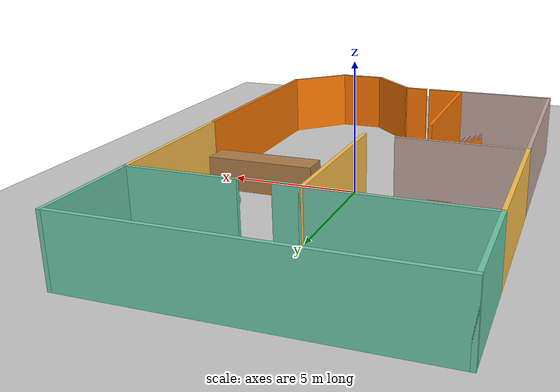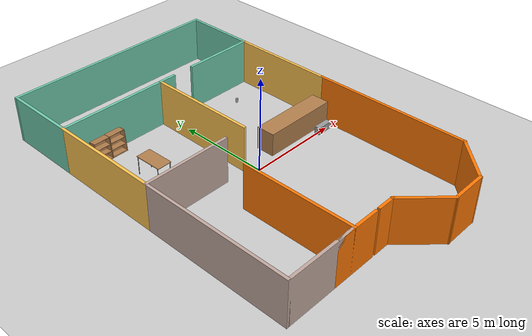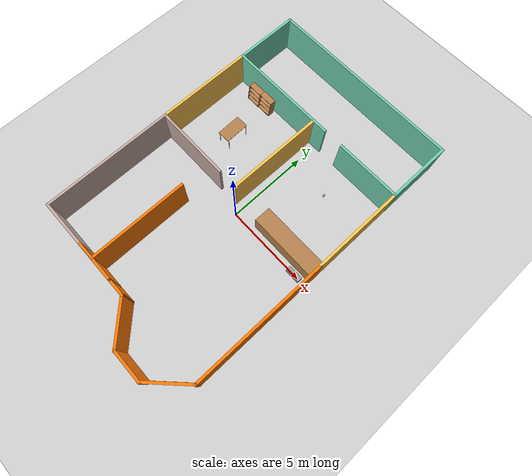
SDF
<sdf version="1.7">
 <world name="default">
  <plugin name="welcome" filename="libwelcome.so"/>
  <light name="sun" type="directional">
   <pose>0 0 10 0 -0 0</pose>
   <diffuse>0.8 0.8 0.8 1</diffuse>
   <specular>0.2 0.2 0.2 1</specular>
   <attenuation>
    <range>1000</range>
    <constant>0.9</constant>
    <linear>0.01</linear>
    <quadratic>0.001</quadratic>
   </attenuation>
   <direction>-0.5 0.1 -0.9</direction>
   <spot><inner_angle>0</inner_angle><outer_angle>0</outer_angle><falloff>0</falloff></spot>
  </light>
  <model name="ground_plane">
   <static>1</static>
   <link name="link">
    <collision name="collision">
     <geometry><plane><normal>0 0 1</normal><size>100 100</size></plane></geometry>
     <surface>
      <contact><collide_bitmask>65535</collide_bitmask></contact>
      <friction><ode><mu>100</mu><mu2>50</mu2></ode></friction>
     </surface>
    </collision>
    <visual name="visual">
     <cast_shadows>0</cast_shadows>
     <geometry><plane><normal>0 0 1</normal><size>100 100</size></plane></geometry>
     <material>
      <script><uri>file://media/materials/scripts/gazebo.material</uri><name>Gazebo/Grey</name></script>
     </material>
    </visual>
   </link>
  </model>
  <gravity>0 0 -9.8</gravity>
  <magnetic_field>6e-06 2.3e-05 -4.2e-05</magnetic_field>
  <atmosphere type="adiabatic"/>
  <physics type="ode">
   <max_step_size>0.001</max_step_size>
   <real_time_factor>1</real_time_factor>
   <real_time_update_rate>1000</real_time_update_rate>
  </physics>
  <scene><ambient>0.4 0.4 0.4 1</ambient><background>0.7 0.7 0.7 1</background><shadows>1</shadows></scene>
  <spherical_coordinates>
   <surface_model>EARTH_WGS84</surface_model>
   <latitude_deg>0</latitude_deg>
   <longitude_deg>0</longitude_deg>
   <elevation>0</elevation>
   <heading_deg>0</heading_deg>
  </spherical_coordinates>
  <model name="Model">
   <pose>-0.415298 0.49723 0 0 -0 0</pose>
   <link name="Wall_0">
    <collision name="Wall_0_Collision">
     <geometry><box><size>12 0.15 2.5</size></box></geometry>
     <pose>0 0 1.25 0 -0 0</pose>
    </collision>
    <visual name="Wall_0_Visual">
     <pose>0 0 1.25 0 -0 0</pose>
     <geometry><box><size>12 0.15 2.5</size></box></geometry>
     <material>
      <script><uri>file://media/materials/scripts/gazebo.material</uri><name>Gazebo/Grey</name></script>
      <ambient>0.435294 0.796078 0.67451 1</ambient>
     </material>
     <meta><layer>0</layer></meta>
    </visual>
    <pose>-0.015533 9.70977 0 0 -0 0</pose>
   </link>
   <link name="Wall_11">
    <collision name="Wall_11_Collision">
     <geometry><box><size>4 0.15 2.5</size></box></geometry>
     <pose>0 0 1.25 0 -0 0</pose>
    </collision>
    <visual name="Wall_11_Visual">
     <pose>0 0 1.25 0 -0 0</pose>
     <geometry><box><size>4 0.15 2.5</size></box></geometry>
     <material>
      <script><uri>file://media/materials/scripts/gazebo.material</uri><name>Gazebo/Grey</name></script>
      <ambient>0.435294 0.796078 0.67451 1</ambient>
     </material>
     <meta><layer>0</layer></meta>
    </visual>
    <pose>5.90947 7.78477 0 0 -0 -1.5708</pose>
   </link>
   <link name="Wall_12">
    <collision name="Wall_12_Collision">
     <geometry><box><size>4 0.15 2.5</size></box></geometry>
     <pose>0 0 1.25 0 -0 0</pose>
    </collision>
    <visual name="Wall_12_Visual">
     <pose>0 0 1.25 0 -0 0</pose>
     <geometry><box><size>4 0.15 2.5</size></box></geometry>
     <material>
      <script><uri>file://media/materials/scripts/gazebo.material</uri><name>Gazebo/Grey</name></script>
      <ambient>0.435294 0.796078 0.67451 1</ambient>
     </material>
     <meta><layer>0</layer></meta>
    </visual>
    <pose>3.98447 5.85977 0 0 -0 3.14159</pose>
   </link>
   <link name="Wall_14">
    <collision name="Wall_14_Collision">
     <geometry><box><size>5.65274 0.15 2.5</size></box></geometry>
     <pose>0 0 1.25 0 -0 0</pose>
    </collision>
    <visual name="Wall_14_Visual">
     <pose>0 0 1.25 0 -0 0</pose>
     <geometry><box><size>5.65274 0.15 2.5</size></box></geometry>
     <material>
      <script><uri>file://media/materials/scripts/gazebo.material</uri><name>Gazebo/Grey</name></script>
      <ambient>1 0.764706 0.305882 1</ambient>
     </material>
     <meta><layer>0</layer></meta>
    </visual>
    <pose>5.90938 3.10857 0 0 -0 -1.57083</pose>
   </link>
   <link name="Wall_17">
    <collision name="Wall_17_Collision">
     <geometry><box><size>8 0.15 2.5</size></box></geometry>
     <pose>0 0 1.25 0 -0 0</pose>
    </collision>
    <visual name="Wall_17_Visual">
     <pose>0 0 1.25 0 -0 0</pose>
     <geometry><box><size>8 0.15 2.5</size></box></geometry>
     <material>
      <script><uri>file://media/materials/scripts/gazebo.material</uri><name>Gazebo/Grey</name></script>
      <ambient>0.760784 0.662745 0.627451 1</ambient>
     </material>
     <meta><layer>0</layer></meta>
    </visual>
    <pose>-5.94053 -3.91523 0 0 -0 -1.5708</pose>
   </link>
   <link name="Wall_18">
    <collision name="Wall_18_Collision">
     <geometry><box><size>4 0.15 2.5</size></box></geometry>
     <pose>0 0 1.25 0 -0 0</pose>
    </collision>
    <visual name="Wall_18_Visual">
     <pose>0 0 1.25 0 -0 0</pose>
     <geometry><box><size>4 0.15 2.5</size></box></geometry>
     <material>
      <script><uri>file://media/materials/scripts/gazebo.material</uri><name>Gazebo/Grey</name></script>
      <ambient>0.760784 0.662745 0.627451 1</ambient>
     </material>
     <meta><layer>0</layer></meta>
    </visual>
    <pose>-4.01553 -7.84023 0 0 -0 0</pose>
   </link>
   <link name="Wall_19">
    <collision name="Wall_19_Collision">
     <geometry><box><size>6 0.15 2.5</size></box></geometry>
     <pose>0 0 1.25 0 -0 0</pose>
    </collision>
    <visual name="Wall_19_Visual">
     <pose>0 0 1.25 0 -0 0</pose>
     <geometry><box><size>6 0.15 2.5</size></box></geometry>
     <material>
      <script><uri>file://media/materials/scripts/gazebo.material</uri><name>Gazebo/Grey</name></script>
      <ambient>0.996078 0.47451 0.0196078 1</ambient>
     </material>
     <meta><layer>0</layer></meta>
    </visual>
    <pose>-2.09053 -4.91523 0 0 -0 1.5708</pose>
   </link>
   <link name="Wall_2">
    <collision name="Wall_2_Collision">
     <geometry><box><size>4 0.15 2.5</size></box></geometry>
     <pose>0 0 1.25 0 -0 0</pose>
    </collision>
    <visual name="Wall_2_Visual">
     <pose>0 0 1.25 0 -0 0</pose>
     <geometry><box><size>4 0.15 2.5</size></box></geometry>
     <material>
      <script><uri>file://media/materials/scripts/gazebo.material</uri><name>Gazebo/Grey</name></script>
      <ambient>0.435294 0.796078 0.67451 1</ambient>
     </material>
     <meta><layer>0</layer></meta>
    </visual>
    <pose>-5.94053 7.78477 0 0 -0 -1.5708</pose>
   </link>
   <link name="Wall_22">
    <collision name="Wall_22_Collision">
     <geometry><box><size>8.34781 0.15 2.5</size></box></geometry>
     <pose>0 0 1.25 0 -0 0</pose>
    </collision>
    <visual name="Wall_22_Visual">
     <pose>0 0 1.25 0 -0 0</pose>
     <geometry><box><size>8.34781 0.15 2.5</size></box></geometry>
     <material>
      <script><uri>file://media/materials/scripts/gazebo.material</uri><name>Gazebo/Grey</name></script>
      <ambient>0.996078 0.47451 0.0196078 1</ambient>
     </material>
     <meta><layer>0</layer></meta>
    </visual>
    <pose>5.90938 -3.74143 0 0 -0 -1.57078</pose>
   </link>
   <link name="Wall_23">
    <collision name="Wall_23_Collision">
     <geometry><box><size>2.75 0.15 2.5</size></box></geometry>
     <pose>0 0 1.25 0 -0 0</pose>
    </collision>
    <visual name="Wall_23_Visual">
     <pose>0 0 1.25 0 -0 0</pose>
     <geometry><box><size>2.75 0.15 2.5</size></box></geometry>
     <material>
      <script><uri>file://media/materials/scripts/gazebo.material</uri><name>Gazebo/Grey</name></script>
      <ambient>0.996078 0.47451 0.0196078 1</ambient>
     </material>
     <meta><layer>0</layer></meta>
    </visual>
    <pose>4.99023 -8.75947 0 0 -0 -2.35619</pose>
   </link>
   <link name="Wall_24">
    <collision name="Wall_24_Collision">
     <geometry><box><size>2 0.15 2.5</size></box></geometry>
     <pose>0 0 1.25 0 -0 0</pose>
    </collision>
    <visual name="Wall_24_Visual">
     <pose>0 0 1.25 0 -0 0</pose>
     <geometry><box><size>2 0.15 2.5</size></box></geometry>
     <material>
      <script><uri>file://media/materials/scripts/gazebo.material</uri><name>Gazebo/Grey</name></script>
      <ambient>0.996078 0.47451 0.0196078 1</ambient>
     </material>
     <meta><layer>0</layer></meta>
    </visual>
    <pose>3.14599 -9.67871 0 0 -0 3.14159</pose>
   </link>
   <link name="Wall_25">
    <collision name="Wall_25_Collision">
     <geometry><box><size>2.75 0.15 2.5</size></box></geometry>
     <pose>0 0 1.25 0 -0 0</pose>
    </collision>
    <visual name="Wall_25_Visual">
     <pose>0 0 1.25 0 -0 0</pose>
     <geometry><box><size>2.75 0.15 2.5</size></box></geometry>
     <material>
      <script><uri>file://media/materials/scripts/gazebo.material</uri><name>Gazebo/Grey</name></script>
      <ambient>0.996078 0.47451 0.0196078 1</ambient>
     </material>
     <meta><layer>0</layer></meta>
    </visual>
    <pose>1.30175 -8.75947 0 0 -0 2.35619</pose>
   </link>
   <link name="Wall_26">
    <collision name="Wall_26_Collision">
     <geometry><box><size>1 0.15 2.5</size></box></geometry>
     <pose>0 0 1.25 0 -0 0</pose>
    </collision>
    <visual name="Wall_26_Visual">
     <pose>0 0 1.25 0 -0 0</pose>
     <geometry><box><size>1 0.15 2.5</size></box></geometry>
     <material>
      <script><uri>file://media/materials/scripts/gazebo.material</uri><name>Gazebo/Grey</name></script>
      <ambient>0.996078 0.47451 0.0196078 1</ambient>
     </material>
     <meta><layer>0</layer></meta>
    </visual>
    <pose>-0.042488 -7.84023 0 0 -0 3.14159</pose>
   </link>
   <link name="Wall_28">
    <collision name="Wall_28_Collision">
     <geometry><box><size>2.5 0.15 2.5</size></box></geometry>
     <pose>0 0 1.25 0 -0 0</pose>
    </collision>
    <visual name="Wall_28_Visual">
     <pose>0 0 1.25 0 -0 0</pose>
     <geometry><box><size>2.5 0.15 2.5</size></box></geometry>
     <material>
      <script><uri>file://media/materials/scripts/gazebo.material</uri><name>Gazebo/Grey</name></script>
      <ambient>0.996078 0.47451 0.0196078 1</ambient>
     </material>
     <meta><layer>0</layer></meta>
    </visual>
    <pose>-1.91553 -7.84023 0 0 -0 0</pose>
   </link>
   <link name="Wall_3">
    <collision name="Wall_3_Collision">
     <geometry><box><size>6 0.15 2.5</size></box></geometry>
     <pose>0 0 1.25 0 -0 0</pose>
    </collision>
    <visual name="Wall_3_Visual">
     <pose>0 0 1.25 0 -0 0</pose>
     <geometry><box><size>6 0.15 2.5</size></box></geometry>
     <material>
      <script><uri>file://media/materials/scripts/gazebo.material</uri><name>Gazebo/Grey</name></script>
      <ambient>0.435294 0.796078 0.67451 1</ambient>
     </material>
     <meta><layer>0</layer></meta>
    </visual>
    <pose>-3.01553 5.85977 0 0 -0 0</pose>
   </link>
   <link name="Wall_31">
    <collision name="Wall_31_Collision">
     <geometry><box><size>4.25 1 1.25</size></box></geometry>
     <pose>0 0 0.625 0 -0 0</pose>
    </collision>
    <visual name="Wall_31_Visual">
     <pose>0 0 0.625 0 -0 0</pose>
     <geometry><box><size>4.25 1 1.25</size></box></geometry>
     <material>
      <script><uri>file://media/materials/scripts/gazebo.material</uri><name>Gazebo/Wood</name></script>
      <ambient>1 1 1 1</ambient>
     </material>
     <meta><layer>0</layer></meta>
    </visual>
    <pose>3.8083 0.326538 0 0 -0 0</pose>
   </link>
   <link name="Wall_4">
    <collision name="Wall_4_Collision">
     <geometry><box><size>5.9849 0.15 2.5</size></box></geometry>
     <pose>0 0 1.25 0 -0 0</pose>
    </collision>
    <visual name="Wall_4_Visual">
     <pose>0 0 1.25 0 -0 0</pose>
     <geometry><box><size>5.9849 0.15 2.5</size></box></geometry>
     <material>
      <script><uri>file://media/materials/scripts/gazebo.material</uri><name>Gazebo/Grey</name></script>
      <ambient>1 0.764706 0.305882 1</ambient>
     </material>
     <meta><layer>0</layer></meta>
    </visual>
    <pose>-0.098094 2.94233 0 0 -0 -1.57339</pose>
   </link>
   <link name="Wall_6">
    <collision name="Wall_6_Collision">
     <geometry><box><size>6 0.15 2.5</size></box></geometry>
     <pose>0 0 1.25 0 -0 0</pose>
    </collision>
    <visual name="Wall_6_Visual">
     <pose>0 0 1.25 0 -0 0</pose>
     <geometry><box><size>6 0.15 2.5</size></box></geometry>
     <material>
      <script><uri>file://media/materials/scripts/gazebo.material</uri><name>Gazebo/Grey</name></script>
      <ambient>1 0.764706 0.305882 1</ambient>
     </material>
     <meta><layer>0</layer></meta>
    </visual>
    <pose>-5.94053 2.93477 0 0 -0 -1.5708</pose>
   </link>
   <link name="Wall_7">
    <collision name="Wall_7_Collision">
     <geometry><box><size>4.75 0.15 2.5</size></box></geometry>
     <pose>0 0 1.25 0 -0 0</pose>
    </collision>
    <visual name="Wall_7_Visual">
     <pose>0 0 1.25 0 -0 0</pose>
     <geometry><box><size>4.75 0.15 2.5</size></box></geometry>
     <material>
      <script><uri>file://media/materials/scripts/gazebo.material</uri><name>Gazebo/Grey</name></script>
      <ambient>0.760784 0.662745 0.627451 1</ambient>
     </material>
     <meta><layer>0</layer></meta>
    </visual>
    <pose>-3.64053 0.009772 0 0 -0 0</pose>
   </link>
   <link name="Wall_9">
    <collision name="Wall_9_Collision">
     <geometry><box><size>1 0.15 2.5</size></box></geometry>
     <pose>0 0 1.25 0 -0 0</pose>
    </collision>
    <visual name="Wall_9_Visual">
     <pose>0 0 1.25 0 -0 0</pose>
     <geometry><box><size>1 0.15 2.5</size></box></geometry>
     <material>
      <script><uri>file://media/materials/scripts/gazebo.material</uri><name>Gazebo/Grey</name></script>
      <ambient>0.435294 0.796078 0.67451 1</ambient>
     </material>
     <meta><layer>0</layer></meta>
    </visual>
    <pose>0.334467 5.85977 0 0 -0 0</pose>
   </link>
   <static>1</static>
  </model>
  <model name="bookshelf">
   <static>1</static>
   <link name="link">
    <inertial><mass>1</mass></inertial>
    <collision name="back">
     <pose>0 0.005 0.6 0 -0 0</pose>
     <geometry><box><size>0.9 0.01 1.2</size></box></geometry>
    </collision>
    <visual name="visual1">
     <pose>0 0.005 0.6 0 -0 0</pose>
     <geometry><box><size>0.9 0.01 1.2</size></box></geometry>
     <material>
      <script><uri>file://media/materials/scripts/gazebo.material</uri><name>Gazebo/Wood</name></script>
     </material>
    </visual>
    <collision name="left_side">
     <pose>0.45 -0.195 0.6 0 -0 0</pose>
     <geometry><box><size>0.02 0.4 1.2</size></box></geometry>
    </collision>
    <visual name="visual2">
     <pose>0.45 -0.195 0.6 0 -0 0</pose>
     <geometry><box><size>0.02 0.4 1.2</size></box></geometry>
     <material>
      <script><uri>file://media/materials/scripts/gazebo.material</uri><name>Gazebo/Wood</name></script>
     </material>
    </visual>
    <collision name="right_side">
     <pose>-0.45 -0.195 0.6 0 -0 0</pose>
     <geometry><box><size>0.02 0.4 1.2</size></box></geometry>
    </collision>
    <visual name="visual3">
     <pose>-0.45 -0.195 0.6 0 -0 0</pose>
     <geometry><box><size>0.02 0.4 1.2</size></box></geometry>
     <material>
      <script><uri>file://media/materials/scripts/gazebo.material</uri><name>Gazebo/Wood</name></script>
     </material>
    </visual>
    <collision name="bottom">
     <pose>0 -0.195 0.03 0 -0 0</pose>
     <geometry><box><size>0.88 0.4 0.06</size></box></geometry>
    </collision>
    <visual name="visual4">
     <pose>0 -0.195 0.03 0 -0 0</pose>
     <geometry><box><size>0.88 0.4 0.06</size></box></geometry>
     <material>
      <script><uri>file://media/materials/scripts/gazebo.material</uri><name>Gazebo/Wood</name></script>
     </material>
    </visual>
    <collision name="top">
     <pose>0 -0.195 1.19 0 -0 0</pose>
     <geometry><box><size>0.88 0.4 0.02</size></box></geometry>
    </collision>
    <visual name="visual5">
     <pose>0 -0.195 1.19 0 -0 0</pose>
     <geometry><box><size>0.88 0.4 0.02</size></box></geometry>
     <material>
      <script><uri>file://media/materials/scripts/gazebo.material</uri><name>Gazebo/Wood</name></script>
     </material>
    </visual>
    <collision name="low_shelf">
     <pose>0 -0.195 0.43 0 -0 0</pose>
     <geometry><box><size>0.88 0.4 0.02</size></box></geometry>
    </collision>
    <visual name="visual6">
     <pose>0 -0.195 0.43 0 -0 0</pose>
     <geometry><box><size>0.88 0.4 0.02</size></box></geometry>
     <material>
      <script><uri>file://media/materials/scripts/gazebo.material</uri><name>Gazebo/Wood</name></script>
     </material>
    </visual>
    <collision name="high_shelf">
     <pose>0 -0.195 0.8 0 -0 0</pose>
     <geometry><box><size>0.88 0.4 0.02</size></box></geometry>
    </collision>
    <visual name="visual7">
     <pose>0 -0.195 0.8 0 -0 0</pose>
     <geometry><box><size>0.88 0.4 0.02</size></box></geometry>
     <material>
      <script><uri>file://media/materials/scripts/gazebo.material</uri><name>Gazebo/Wood</name></script>
     </material>
    </visual>
   </link>
   <pose>-4.71823 6.08584 0 -0.106297 0 0</pose>
  </model>
  <model name="bookshelf_clone">
   <static>1</static>
   <link name="link">
    <inertial><mass>1</mass></inertial>
    <collision name="back">
     <pose>0 0.005 0.6 0 -0 0</pose>
     <geometry><box><size>0.9 0.01 1.2</size></box></geometry>
    </collision>
    <visual name="visual1">
     <pose>0 0.005 0.6 0 -0 0</pose>
     <geometry><box><size>0.9 0.01 1.2</size></box></geometry>
     <material>
      <script><uri>file://media/materials/scripts/gazebo.material</uri><name>Gazebo/Wood</name></script>
     </material>
    </visual>
    <collision name="left_side">
     <pose>0.45 -0.195 0.6 0 -0 0</pose>
     <geometry><box><size>0.02 0.4 1.2</size></box></geometry>
    </collision>
    <visual name="visual2">
     <pose>0.45 -0.195 0.6 0 -0 0</pose>
     <geometry><box><size>0.02 0.4 1.2</size></box></geometry>
     <material>
      <script><uri>file://media/materials/scripts/gazebo.material</uri><name>Gazebo/Wood</name></script>
     </material>
    </visual>
    <collision name="right_side">
     <pose>-0.45 -0.195 0.6 0 -0 0</pose>
     <geometry><box><size>0.02 0.4 1.2</size></box></geometry>
    </collision>
    <visual name="visual3">
     <pose>-0.45 -0.195 0.6 0 -0 0</pose>
     <geometry><box><size>0.02 0.4 1.2</size></box></geometry>
     <material>
      <script><uri>file://media/materials/scripts/gazebo.material</uri><name>Gazebo/Wood</name></script>
     </material>
    </visual>
    <collision name="bottom">
     <pose>0 -0.195 0.03 0 -0 0</pose>
     <geometry><box><size>0.88 0.4 0.06</size></box></geometry>
    </collision>
    <visual name="visual4">
     <pose>0 -0.195 0.03 0 -0 0</pose>
     <geometry><box><size>0.88 0.4 0.06</size></box></geometry>
     <material>
      <script><uri>file://media/materials/scripts/gazebo.material</uri><name>Gazebo/Wood</name></script>
     </material>
    </visual>
    <collision name="top">
     <pose>0 -0.195 1.19 0 -0 0</pose>
     <geometry><box><size>0.88 0.4 0.02</size></box></geometry>
    </collision>
    <visual name="visual5">
     <pose>0 -0.195 1.19 0 -0 0</pose>
     <geometry><box><size>0.88 0.4 0.02</size></box></geometry>
     <material>
      <script><uri>file://media/materials/scripts/gazebo.material</uri><name>Gazebo/Wood</name></script>
     </material>
    </visual>
    <collision name="low_shelf">
     <pose>0 -0.195 0.43 0 -0 0</pose>
     <geometry><box><size>0.88 0.4 0.02</size></box></geometry>
    </collision>
    <visual name="visual6">
     <pose>0 -0.195 0.43 0 -0 0</pose>
     <geometry><box><size>0.88 0.4 0.02</size></box></geometry>
     <material>
      <script><uri>file://media/materials/scripts/gazebo.material</uri><name>Gazebo/Wood</name></script>
     </material>
    </visual>
    <collision name="high_shelf">
     <pose>0 -0.195 0.8 0 -0 0</pose>
     <geometry><box><size>0.88 0.4 0.02</size></box></geometry>
    </collision>
    <visual name="visual7">
     <pose>0 -0.195 0.8 0 -0 0</pose>
     <geometry><box><size>0.88 0.4 0.02</size></box></geometry>
     <material>
      <script><uri>file://media/materials/scripts/gazebo.material</uri><name>Gazebo/Wood</name></script>
     </material>
    </visual>
   </link>
   <pose>-3.82838 6.10928 0 -0.106297 0 0</pose>
  </model>
  <model name="beer">
   <link name="link">
    <pose>0 0 0.115 0 -0 0</pose>
    <inertial>
     <mass>0.39</mass>
     <inertia><ixx>0.00058</ixx><ixy>0</ixy><ixz>0</ixz><iyy>0.00058</iyy><iyz>0</iyz><izz>0.00019</izz></inertia>
    </inertial>
    <collision name="collision">
     <geometry><cylinder><radius>0.055</radius><length>0.23</length></cylinder></geometry>
    </collision>
    <visual name="visual">
     <geometry><cylinder><radius>0.055</radius><length>0.23</length></cylinder></geometry>
     <material>
      <script>
       <uri>model://beer/materials/scripts</uri>
       <uri>model://beer/materials/textures</uri>
       <name>Beer/Diffuse</name>
      </script>
     </material>
    </visual>
   </link>
   <pose>2.7147 4.18492 0.77499 -1e-06 2.6e-05 0.009615</pose>
  </model>
  <model name="table">
   <static>1</static>
   <link name="link">
    <collision name="surface">
     <pose>0 0 1 0 -0 0</pose>
     <geometry><box><size>1.5 0.8 0.03</size></box></geometry>
     <surface><friction><ode><mu>0.6</mu><mu2>0.6</mu2></ode></friction></surface>
    </collision>
    <visual name="visual1">
     <pose>0 0 1 0 -0 0</pose>
     <geometry><box><size>1.5 0.8 0.03</size></box></geometry>
     <material>
      <script><uri>file://media/materials/scripts/gazebo.material</uri><name>Gazebo/Wood</name></script>
     </material>
    </visual>
    <collision name="front_left_leg">
     <pose>0.68 0.38 0.5 0 -0 0</pose>
     <geometry><cylinder><radius>0.02</radius><length>1</length></cylinder></geometry>
    </collision>
    <visual name="front_left_leg">
     <pose>0.68 0.38 0.5 0 -0 0</pose>
     <geometry><cylinder><radius>0.02</radius><length>1</length></cylinder></geometry>
     <material>
      <script><uri>file://media/materials/scripts/gazebo.material</uri><name>Gazebo/Grey</name></script>
     </material>
    </visual>
    <collision name="front_right_leg">
     <pose>0.68 -0.38 0.5 0 -0 0</pose>
     <geometry><cylinder><radius>0.02</radius><length>1</length></cylinder></geometry>
    </collision>
    <visual name="front_right_leg">
     <pose>0.68 -0.38 0.5 0 -0 0</pose>
     <geometry><cylinder><radius>0.02</radius><length>1</length></cylinder></geometry>
     <material>
      <script><uri>file://media/materials/scripts/gazebo.material</uri><name>Gazebo/Grey</name></script>
     </material>
    </visual>
    <collision name="back_right_leg">
     <pose>-0.68 -0.38 0.5 0 -0 0</pose>
     <geometry><cylinder><radius>0.02</radius><length>1</length></cylinder></geometry>
    </collision>
    <visual name="back_right_leg">
     <pose>-0.68 -0.38 0.5 0 -0 0</pose>
     <geometry><cylinder><radius>0.02</radius><length>1</length></cylinder></geometry>
     <material>
      <script><uri>file://media/materials/scripts/gazebo.material</uri><name>Gazebo/Grey</name></script>
     </material>
    </visual>
    <collision name="back_left_leg">
     <pose>-0.68 0.38 0.5 0 -0 0</pose>
     <geometry><cylinder><radius>0.02</radius><length>1</length></cylinder></geometry>
    </collision>
    <visual name="back_left_leg">
     <pose>-0.68 0.38 0.5 0 -0 0</pose>
     <geometry><cylinder><radius>0.02</radius><length>1</length></cylinder></geometry>
     <material>
      <script><uri>file://media/materials/scripts/gazebo.material</uri><name>Gazebo/Grey</name></script>
     </material>
    </visual>
   </link>
   <pose>-3.76548 3.19789 0 0 -0 1.59658</pose>
  </model>
  <model name="Box_36x15W">
   <link name="Wall">
    <pose>0 0 0.1985 0 -0 0</pose>
    <inertial>
     <mass>5</mass>
     <inertia><ixx>0.1022</ixx><iyy>0.4107</iyy><izz>0.3815</izz><ixy>0</ixy><ixz>0</ixz><iyz>0</iyz></inertia>
    </inertial>
    <collision name="Wall_Collision"><geometry><box><size>0.91 0.296 0.397</size></box></geometry></collision>
    <visual name="Wall_Visual">
     <geometry><box><size>0.91 0.296 0.397</size></box></geometry>
     <material>
      <script><uri>file://media/materials/scripts/gazebo.material</uri><name>Gazebo/Grey</name></script>
      <ambient>1 1 1 1</ambient>
     </material>
    </visual>
   </link>
   <static>1</static>
   <pose>4.69707 -0.010207 0 0 -0 0</pose>
  </model>
 </world>
</sdf>
